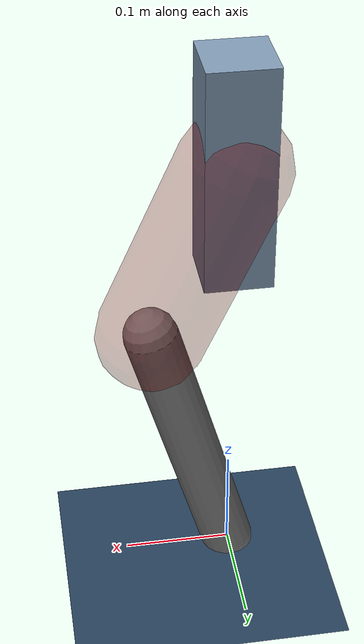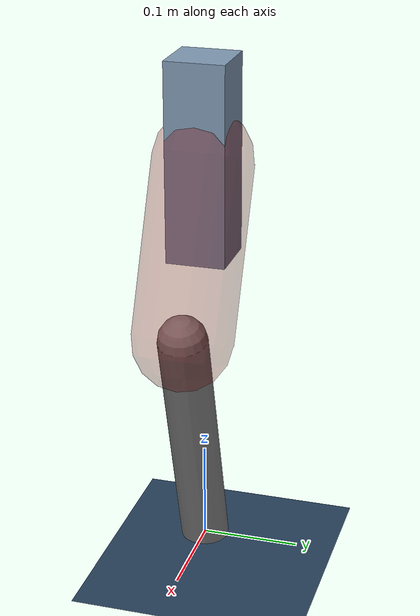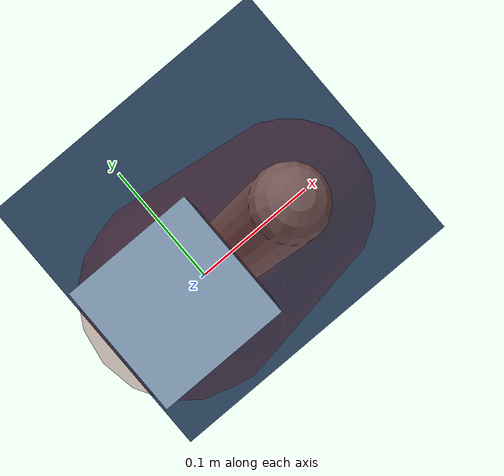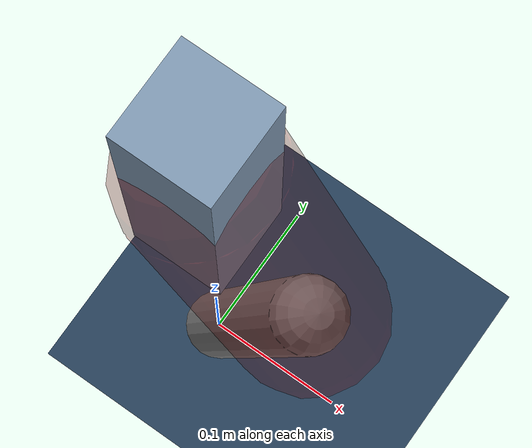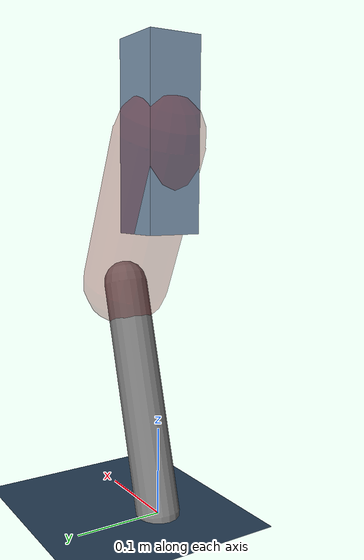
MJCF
<mujoco model="Hopper2D">
	<compiler inertiafromgeom="true" angle="radian" />
	<option timestep="0.001" integrator="implicit" cone="elliptic" solver="Newton" tolerance="1e-10" />

	<default>
		<geom contype="1" conaffinity="1" condim="3" friction="2 0.005 0.0001" solref="0.005 1" />
		<joint limited="true" damping="0.1" />
	</default>

	<asset>
		<texture name="skybox" type="skybox" builtin="gradient" rgb1=".4 .6 .8" rgb2="0 0 0" width="800" height="800" />
		<texture name="grid" type="2d" builtin="checker" rgb1=".1 .2 .3" rgb2=".2 .3 .4" width="300" height="300" mark="edge" markrgb=".2 .3 .4" />
		<material name="ground" texture="grid" texrepeat="1 1" texuniform="true" reflectance="0.1" />
		<material name="leg" rgba="0.5 0.6 0.7 1" />
	</asset>

	<worldbody>

		<geom name="floor" type="plane" size="5 5 0.25" material="ground" />

		<light directional="false" diffuse="0.8 0.8 0.8" specular="0.3 0.3 0.3" pos="0 0 2" dir="0 0 -1" />
		<light mode="targetbodycom" target="base" directional="false" diffuse="0.8 0.8 0.8" specular="0.3 0.3 0.3" pos="0 0 2" dir="0 0 -1" />

		<camera name="fixed" pos="0 -2 1" xyaxes="1 0 0 0 0 1" />
		<camera name="tracking" mode="trackcom" pos="0 -3 1" />

		<body name="root" pos="0 0 0.41768440949307106">
			<joint name="slide_x" type="slide" axis="1 0 0" range="-100 100" />
			<joint name="slide_z" type="slide" axis="0 0 1" range="0 10" />

			<body name="base" pos="0 0 0">
				<geom name="torso" type="box" size="0.03 0.03 0.1" mass="3.0060000000000002" material="leg" />

				<body name="link1" pos="0 0 0" euler="0 1.1472974973947998 0">
					<joint type="hinge" axis="0 -1 0" pos="0 0 0" name="hinge1" limited="true" range="-3.14 3.14" stiffness="0" damping="0.1" />
					<geom name="thigh" type="capsule" fromto="0 0 0 0.1761391266430748 0 0" size="0.05" rgba="0.5 0 0 0.3" mass="0.6711339039433795" />

					<body name="link2" pos="0.1761391266430748 0 0" euler="0 0.6979322102894421 0">
						<joint type="hinge" axis="0 -1 0" pos="0 0 0" name="hinge2" limited="true" range="-3.14 3.14" stiffness="0" damping="0.1" />
						<geom name="shank" type="capsule" fromto="0 0 0 0.2671012194595378 0 0" size="0.025" mass="0.4565809755676302" />

					</body>
				</body>
			</body>
		</body>
	</worldbody>

	<actuator>
		<motor name="torque1" joint="hinge1" ctrlrange="-151.04524939709444 151.04524939709444" ctrllimited="true" gear="1" />
		<motor name="torque2" joint="hinge2" ctrlrange="-52.93786717757723 52.93786717757723" ctrllimited="true" gear="1" />
	</actuator>
</mujoco>
